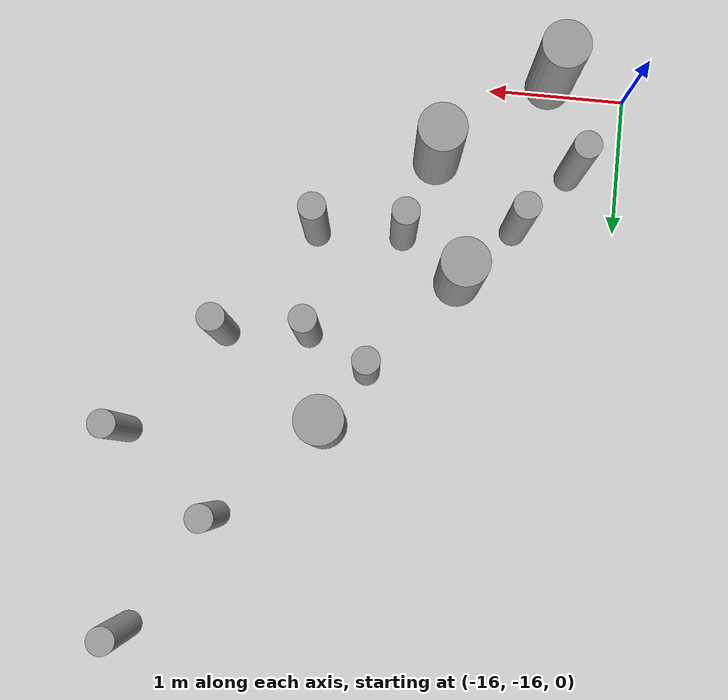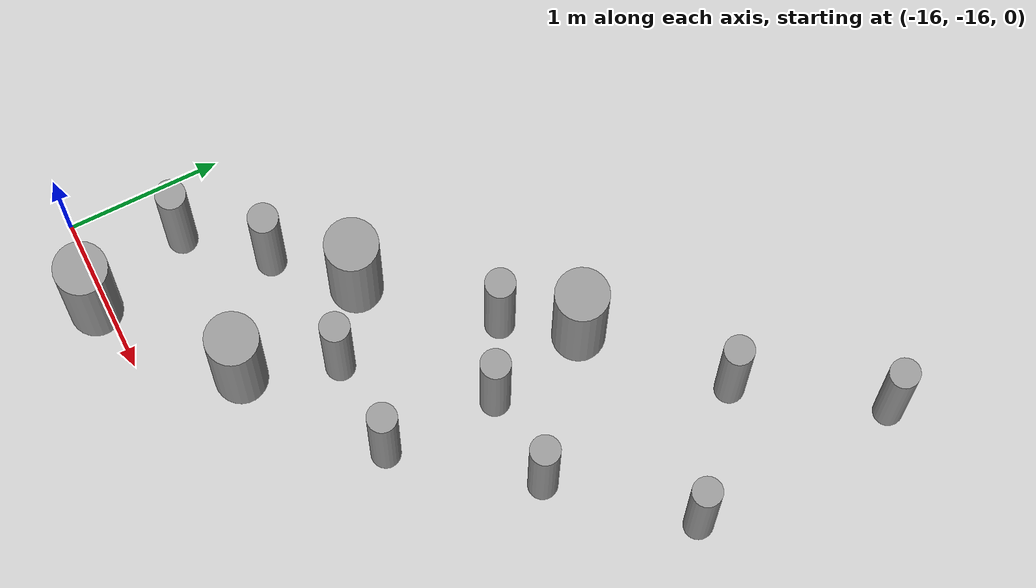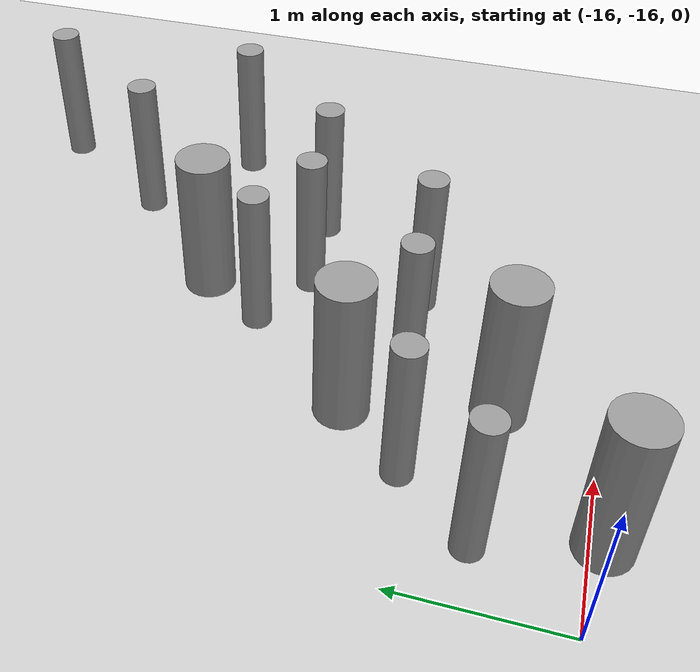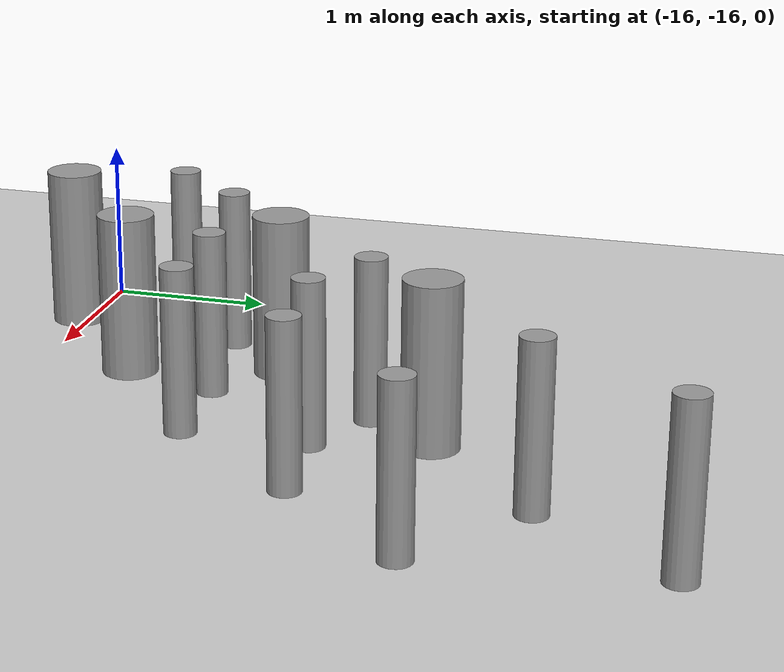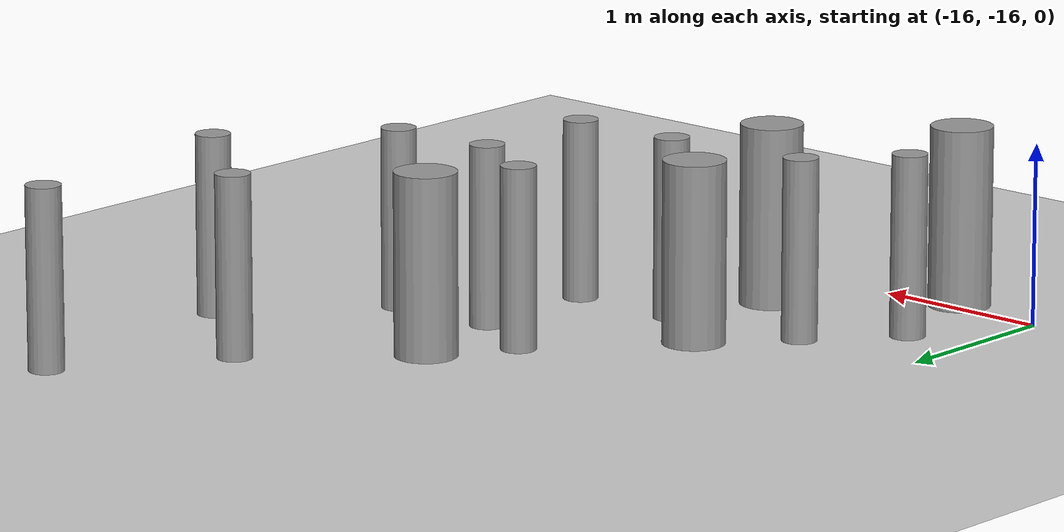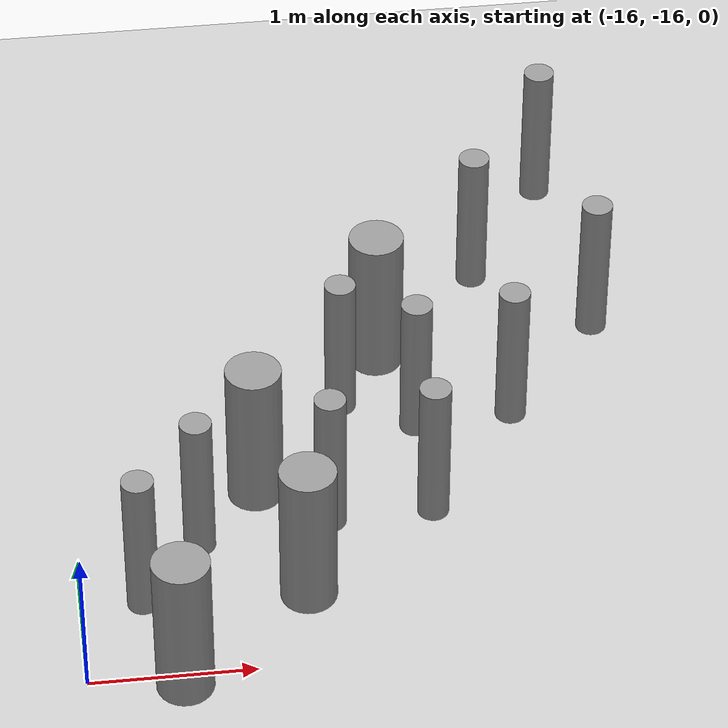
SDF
<sdf version="1.6">
 <world name="default">
  <model name="ground_plane">
   <static>1</static>
   <link name="link">
    <collision name="collision">
     <geometry><plane><normal>0 0 1</normal><size>100 100</size></plane></geometry>
     <surface><friction><ode><mu>100</mu><mu2>50</mu2></ode></friction></surface>
    </collision>
    <visual name="visual">
     <cast_shadows>0</cast_shadows>
     <geometry><plane><normal>0 0 1</normal><size>100 100</size></plane></geometry>
     <material>
      <script><uri>file://media/materials/scripts/gazebo.material</uri><name>Gazebo/Grey</name></script>
     </material>
    </visual>
   </link>
  </model>
  <model name="cyl_wall_clone_clone_1_clone_1_clone_clone_0_clone_1_clone_1_clone_0">
   <link name="link_0">
    <pose>-2.73893 -0.366465 0 0 -0 0</pose>
    <inertial>
     <mass>0.0374993</mass>
     <inertia>
      <ixx>0.00321281</ixx>
      <ixy>0</ixy>
      <ixz>0</ixz>
      <iyy>0.00321281</iyy>
      <iyz>0</iyz>
      <izz>0.000175774</izz>
     </inertia>
    </inertial>
    <visual name="visual">
     <geometry><cylinder><radius>0.0968661</radius><length>1</length></cylinder></geometry>
     <material>
      <lighting>1</lighting>
      <script><uri>file://media/materials/scripts/gazebo.material</uri><name>Gazebo/Grey</name></script>
      <ambient>0.3 0.3 0.3 1</ambient>
      <diffuse>0.7 0.7 0.7 1</diffuse>
      <specular>0.01 0.01 0.01 1</specular>
      <emissive>0 0 0 1</emissive>
     </material>
    </visual>
    <collision name="collision">
     <geometry><cylinder><radius>0.096866</radius><length>1</length></cylinder></geometry>
     <surface>
      <friction>
       <ode><mu>1</mu><mu2>1</mu2><fdir1>0 0 0</fdir1><slip1>0</slip1><slip2>0</slip2></ode>
       <torsional>
        <coefficient>1</coefficient>
        <patch_radius>0</patch_radius>
        <surface_radius>0</surface_radius>
        <use_patch_radius>1</use_patch_radius>
        <ode><slip>0</slip></ode>
       </torsional>
      </friction>
      <bounce><restitution_coefficient>0</restitution_coefficient><threshold>1e+06</threshold></bounce>
      <contact>
       <collide_without_contact>0</collide_without_contact>
       <collide_without_contact_bitmask>1</collide_without_contact_bitmask>
       <collide_bitmask>1</collide_bitmask>
       <ode>
        <soft_cfm>0</soft_cfm>
        <soft_erp>0.2</soft_erp>
        <kp>1e+13</kp>
        <kd>1</kd>
        <max_vel>0.01</max_vel>
        <min_depth>0</min_depth>
       </ode>
       <bullet>
        <split_impulse>1</split_impulse>
        <split_impulse_penetration_threshold>-0.01</split_impulse_penetration_threshold>
        <soft_cfm>0</soft_cfm>
        <soft_erp>0.2</soft_erp>
        <kp>1e+13</kp>
        <kd>1</kd>
       </bullet>
      </contact>
     </surface>
    </collision>
   </link>
   <link name="link_0_clone">
    <pose>-1.73893 0.61877 0 0 -0 0</pose>
    <inertial>
     <mass>0.0374993</mass>
     <inertia>
      <ixx>0.00321281</ixx>
      <ixy>0</ixy>
      <ixz>0</ixz>
      <iyy>0.00321281</iyy>
      <iyz>0</iyz>
      <izz>0.000175774</izz>
     </inertia>
    </inertial>
    <visual name="visual">
     <geometry><cylinder><radius>0.0968661</radius><length>1</length></cylinder></geometry>
     <material>
      <lighting>1</lighting>
      <script><uri>file://media/materials/scripts/gazebo.material</uri><name>Gazebo/Grey</name></script>
      <ambient>0.3 0.3 0.3 1</ambient>
      <diffuse>0.7 0.7 0.7 1</diffuse>
      <specular>0.01 0.01 0.01 1</specular>
      <emissive>0 0 0 1</emissive>
      <shader type="pixel"/>
     </material>
    </visual>
    <collision name="collision">
     <geometry><cylinder><radius>0.096866</radius><length>1</length></cylinder></geometry>
     <surface>
      <friction>
       <ode><mu>1</mu><mu2>1</mu2><fdir1>0 0 0</fdir1><slip1>0</slip1><slip2>0</slip2></ode>
       <torsional>
        <coefficient>1</coefficient>
        <patch_radius>0</patch_radius>
        <surface_radius>0</surface_radius>
        <use_patch_radius>1</use_patch_radius>
        <ode><slip>0</slip></ode>
       </torsional>
      </friction>
      <bounce><restitution_coefficient>0</restitution_coefficient><threshold>1e+06</threshold></bounce>
      <contact>
       <collide_without_contact>0</collide_without_contact>
       <collide_without_contact_bitmask>1</collide_without_contact_bitmask>
       <collide_bitmask>1</collide_bitmask>
       <ode>
        <soft_cfm>0</soft_cfm>
        <soft_erp>0.2</soft_erp>
        <kp>1e+13</kp>
        <kd>1</kd>
        <max_vel>0.01</max_vel>
        <min_depth>0</min_depth>
       </ode>
       <bullet>
        <split_impulse>1</split_impulse>
        <split_impulse_penetration_threshold>-0.01</split_impulse_penetration_threshold>
        <soft_cfm>0</soft_cfm>
        <soft_erp>0.2</soft_erp>
        <kp>1e+13</kp>
        <kd>1</kd>
       </bullet>
      </contact>
     </surface>
    </collision>
   </link>
   <link name="link_0_clone_clone">
    <pose>-0.327073 0.143919 0 0 -0 0</pose>
    <inertial>
     <mass>0.0374993</mass>
     <inertia>
      <ixx>0.00321281</ixx>
      <ixy>0</ixy>
      <ixz>0</ixz>
      <iyy>0.00321281</iyy>
      <iyz>0</iyz>
      <izz>0.000175774</izz>
     </inertia>
    </inertial>
    <visual name="visual">
     <geometry><cylinder><radius>0.0968661</radius><length>1</length></cylinder></geometry>
     <material>
      <lighting>1</lighting>
      <script><uri>file://media/materials/scripts/gazebo.material</uri><name>Gazebo/Grey</name></script>
      <ambient>0.3 0.3 0.3 1</ambient>
      <diffuse>0.7 0.7 0.7 1</diffuse>
      <specular>0.01 0.01 0.01 1</specular>
      <emissive>0 0 0 1</emissive>
      <shader type="pixel"/>
     </material>
    </visual>
    <collision name="collision">
     <geometry><cylinder><radius>0.096866</radius><length>1</length></cylinder></geometry>
     <surface>
      <friction>
       <ode><mu>1</mu><mu2>1</mu2><fdir1>0 0 0</fdir1><slip1>0</slip1><slip2>0</slip2></ode>
       <torsional>
        <coefficient>1</coefficient>
        <patch_radius>0</patch_radius>
        <surface_radius>0</surface_radius>
        <use_patch_radius>1</use_patch_radius>
        <ode><slip>0</slip></ode>
       </torsional>
      </friction>
      <bounce><restitution_coefficient>0</restitution_coefficient><threshold>1e+06</threshold></bounce>
      <contact>
       <collide_without_contact>0</collide_without_contact>
       <collide_without_contact_bitmask>1</collide_without_contact_bitmask>
       <collide_bitmask>1</collide_bitmask>
       <ode>
        <soft_cfm>0</soft_cfm>
        <soft_erp>0.2</soft_erp>
        <kp>1e+13</kp>
        <kd>1</kd>
        <max_vel>0.01</max_vel>
        <min_depth>0</min_depth>
       </ode>
       <bullet>
        <split_impulse>1</split_impulse>
        <split_impulse_penetration_threshold>-0.01</split_impulse_penetration_threshold>
        <soft_cfm>0</soft_cfm>
        <soft_erp>0.2</soft_erp>
        <kp>1e+13</kp>
        <kd>1</kd>
       </bullet>
      </contact>
     </surface>
    </collision>
   </link>
   <link name="link_0_clone_clone_0">
    <pose>1.26107 -0.419359 0 0 -0 0</pose>
    <inertial>
     <mass>0.0374993</mass>
     <inertia>
      <ixx>0.00321281</ixx>
      <ixy>0</ixy>
      <ixz>0</ixz>
      <iyy>0.00321281</iyy>
      <iyz>0</iyz>
      <izz>0.000175774</izz>
     </inertia>
    </inertial>
    <visual name="visual">
     <geometry><cylinder><radius>0.0968661</radius><length>1</length></cylinder></geometry>
     <material>
      <lighting>1</lighting>
      <script><uri>file://media/materials/scripts/gazebo.material</uri><name>Gazebo/Grey</name></script>
      <ambient>0.3 0.3 0.3 1</ambient>
      <diffuse>0.7 0.7 0.7 1</diffuse>
      <specular>0.01 0.01 0.01 1</specular>
      <emissive>0 0 0 1</emissive>
      <shader type="pixel"/>
     </material>
    </visual>
    <collision name="collision">
     <geometry><cylinder><radius>0.096866</radius><length>1</length></cylinder></geometry>
     <surface>
      <friction>
       <ode><mu>1</mu><mu2>1</mu2><fdir1>0 0 0</fdir1><slip1>0</slip1><slip2>0</slip2></ode>
       <torsional>
        <coefficient>1</coefficient>
        <patch_radius>0</patch_radius>
        <surface_radius>0</surface_radius>
        <use_patch_radius>1</use_patch_radius>
        <ode><slip>0</slip></ode>
       </torsional>
      </friction>
      <bounce><restitution_coefficient>0</restitution_coefficient><threshold>1e+06</threshold></bounce>
      <contact>
       <collide_without_contact>0</collide_without_contact>
       <collide_without_contact_bitmask>1</collide_without_contact_bitmask>
       <collide_bitmask>1</collide_bitmask>
       <ode>
        <soft_cfm>0</soft_cfm>
        <soft_erp>0.2</soft_erp>
        <kp>1e+13</kp>
        <kd>1</kd>
        <max_vel>0.01</max_vel>
        <min_depth>0</min_depth>
       </ode>
       <bullet>
        <split_impulse>1</split_impulse>
        <split_impulse_penetration_threshold>-0.01</split_impulse_penetration_threshold>
        <soft_cfm>0</soft_cfm>
        <soft_erp>0.2</soft_erp>
        <kp>1e+13</kp>
        <kd>1</kd>
       </bullet>
      </contact>
     </surface>
    </collision>
   </link>
   <link name="link_0_clone_clone_1">
    <pose>-1.73893 -0.277168 0 0 -0 0</pose>
    <inertial>
     <mass>0.0374993</mass>
     <inertia>
      <ixx>0.00321281</ixx>
      <ixy>0</ixy>
      <ixz>0</ixz>
      <iyy>0.00321281</iyy>
      <iyz>0</iyz>
      <izz>0.000175774</izz>
     </inertia>
    </inertial>
    <visual name="visual">
     <geometry><cylinder><radius>0.0968661</radius><length>1</length></cylinder></geometry>
     <material>
      <lighting>1</lighting>
      <script><uri>file://media/materials/scripts/gazebo.material</uri><name>Gazebo/Grey</name></script>
      <ambient>0.3 0.3 0.3 1</ambient>
      <diffuse>0.7 0.7 0.7 1</diffuse>
      <specular>0.01 0.01 0.01 1</specular>
      <emissive>0 0 0 1</emissive>
      <shader type="pixel"/>
     </material>
    </visual>
    <collision name="collision">
     <geometry><cylinder><radius>0.096866</radius><length>1</length></cylinder></geometry>
     <surface>
      <friction>
       <ode><mu>1</mu><mu2>1</mu2><fdir1>0 0 0</fdir1><slip1>0</slip1><slip2>0</slip2></ode>
       <torsional>
        <coefficient>1</coefficient>
        <patch_radius>0</patch_radius>
        <surface_radius>0</surface_radius>
        <use_patch_radius>1</use_patch_radius>
        <ode><slip>0</slip></ode>
       </torsional>
      </friction>
      <bounce><restitution_coefficient>0</restitution_coefficient><threshold>1e+06</threshold></bounce>
      <contact>
       <collide_without_contact>0</collide_without_contact>
       <collide_without_contact_bitmask>1</collide_without_contact_bitmask>
       <collide_bitmask>1</collide_bitmask>
       <ode>
        <soft_cfm>0</soft_cfm>
        <soft_erp>0.2</soft_erp>
        <kp>1e+13</kp>
        <kd>1</kd>
        <max_vel>0.01</max_vel>
        <min_depth>0</min_depth>
       </ode>
       <bullet>
        <split_impulse>1</split_impulse>
        <split_impulse_penetration_threshold>-0.01</split_impulse_penetration_threshold>
        <soft_cfm>0</soft_cfm>
        <soft_erp>0.2</soft_erp>
        <kp>1e+13</kp>
        <kd>1</kd>
       </bullet>
      </contact>
     </surface>
    </collision>
   </link>
   <link name="link_0_clone_clone_2">
    <pose>-0.738934 0.593961 0 0 -0 0</pose>
    <inertial>
     <mass>0.0374993</mass>
     <inertia>
      <ixx>0.00321281</ixx>
      <ixy>0</ixy>
      <ixz>0</ixz>
      <iyy>0.00321281</iyy>
      <iyz>0</iyz>
      <izz>0.000175774</izz>
     </inertia>
    </inertial>
    <visual name="visual">
     <geometry><cylinder><radius>0.0968661</radius><length>1</length></cylinder></geometry>
     <material>
      <lighting>1</lighting>
      <script><uri>file://media/materials/scripts/gazebo.material</uri><name>Gazebo/Grey</name></script>
      <ambient>0.3 0.3 0.3 1</ambient>
      <diffuse>0.7 0.7 0.7 1</diffuse>
      <specular>0.01 0.01 0.01 1</specular>
      <emissive>0 0 0 1</emissive>
      <shader type="pixel"/>
     </material>
    </visual>
    <collision name="collision">
     <geometry><cylinder><radius>0.096866</radius><length>1</length></cylinder></geometry>
     <surface>
      <friction>
       <ode><mu>1</mu><mu2>1</mu2><fdir1>0 0 0</fdir1><slip1>0</slip1><slip2>0</slip2></ode>
       <torsional>
        <coefficient>1</coefficient>
        <patch_radius>0</patch_radius>
        <surface_radius>0</surface_radius>
        <use_patch_radius>1</use_patch_radius>
        <ode><slip>0</slip></ode>
       </torsional>
      </friction>
      <bounce><restitution_coefficient>0</restitution_coefficient><threshold>1e+06</threshold></bounce>
      <contact>
       <collide_without_contact>0</collide_without_contact>
       <collide_without_contact_bitmask>1</collide_without_contact_bitmask>
       <collide_bitmask>1</collide_bitmask>
       <ode>
        <soft_cfm>0</soft_cfm>
        <soft_erp>0.2</soft_erp>
        <kp>1e+13</kp>
        <kd>1</kd>
        <max_vel>0.01</max_vel>
        <min_depth>0</min_depth>
       </ode>
       <bullet>
        <split_impulse>1</split_impulse>
        <split_impulse_penetration_threshold>-0.01</split_impulse_penetration_threshold>
        <soft_cfm>0</soft_cfm>
        <soft_erp>0.2</soft_erp>
        <kp>1e+13</kp>
        <kd>1</kd>
       </bullet>
      </contact>
     </surface>
    </collision>
   </link>
   <link name="link_0_clone_clone_3">
    <pose>0.261066 0.624849 0 0 -0 0</pose>
    <inertial>
     <mass>0.0374993</mass>
     <inertia>
      <ixx>0.00321281</ixx>
      <ixy>0</ixy>
      <ixz>0</ixz>
      <iyy>0.00321281</iyy>
      <iyz>0</iyz>
      <izz>0.000175774</izz>
     </inertia>
    </inertial>
    <visual name="visual">
     <geometry><cylinder><radius>0.0968661</radius><length>1</length></cylinder></geometry>
     <material>
      <lighting>1</lighting>
      <script><uri>file://media/materials/scripts/gazebo.material</uri><name>Gazebo/Grey</name></script>
      <ambient>0.3 0.3 0.3 1</ambient>
      <diffuse>0.7 0.7 0.7 1</diffuse>
      <specular>0.01 0.01 0.01 1</specular>
      <emissive>0 0 0 1</emissive>
      <shader type="pixel"/>
     </material>
    </visual>
    <collision name="collision">
     <geometry><cylinder><radius>0.096866</radius><length>1</length></cylinder></geometry>
     <surface>
      <friction>
       <ode><mu>1</mu><mu2>1</mu2><fdir1>0 0 0</fdir1><slip1>0</slip1><slip2>0</slip2></ode>
       <torsional>
        <coefficient>1</coefficient>
        <patch_radius>0</patch_radius>
        <surface_radius>0</surface_radius>
        <use_patch_radius>1</use_patch_radius>
        <ode><slip>0</slip></ode>
       </torsional>
      </friction>
      <bounce><restitution_coefficient>0</restitution_coefficient><threshold>1e+06</threshold></bounce>
      <contact>
       <collide_without_contact>0</collide_without_contact>
       <collide_without_contact_bitmask>1</collide_without_contact_bitmask>
       <collide_bitmask>1</collide_bitmask>
       <ode>
        <soft_cfm>0</soft_cfm>
        <soft_erp>0.2</soft_erp>
        <kp>1e+13</kp>
        <kd>1</kd>
        <max_vel>0.01</max_vel>
        <min_depth>0</min_depth>
       </ode>
       <bullet>
        <split_impulse>1</split_impulse>
        <split_impulse_penetration_threshold>-0.01</split_impulse_penetration_threshold>
        <soft_cfm>0</soft_cfm>
        <soft_erp>0.2</soft_erp>
        <kp>1e+13</kp>
        <kd>1</kd>
       </bullet>
      </contact>
     </surface>
    </collision>
   </link>
   <link name="link_0_clone_clone_4">
    <pose>-0.239049 -0.353105 0 0 -0 0</pose>
    <inertial>
     <mass>0.0374993</mass>
     <inertia>
      <ixx>0.00321281</ixx>
      <ixy>0</ixy>
      <ixz>0</ixz>
      <iyy>0.00321281</iyy>
      <iyz>0</iyz>
      <izz>0.000175774</izz>
     </inertia>
    </inertial>
    <visual name="visual">
     <geometry><cylinder><radius>0.0968661</radius><length>1</length></cylinder></geometry>
     <material>
      <lighting>1</lighting>
      <script><uri>file://media/materials/scripts/gazebo.material</uri><name>Gazebo/Grey</name></script>
      <ambient>0.3 0.3 0.3 1</ambient>
      <diffuse>0.7 0.7 0.7 1</diffuse>
      <specular>0.01 0.01 0.01 1</specular>
      <emissive>0 0 0 1</emissive>
      <shader type="pixel"/>
     </material>
    </visual>
    <collision name="collision">
     <geometry><cylinder><radius>0.096866</radius><length>1</length></cylinder></geometry>
     <surface>
      <friction>
       <ode><mu>1</mu><mu2>1</mu2><fdir1>0 0 0</fdir1><slip1>0</slip1><slip2>0</slip2></ode>
       <torsional>
        <coefficient>1</coefficient>
        <patch_radius>0</patch_radius>
        <surface_radius>0</surface_radius>
        <use_patch_radius>1</use_patch_radius>
        <ode><slip>0</slip></ode>
       </torsional>
      </friction>
      <bounce><restitution_coefficient>0</restitution_coefficient><threshold>1e+06</threshold></bounce>
      <contact>
       <collide_without_contact>0</collide_without_contact>
       <collide_without_contact_bitmask>1</collide_without_contact_bitmask>
       <collide_bitmask>1</collide_bitmask>
       <ode>
        <soft_cfm>0</soft_cfm>
        <soft_erp>0.2</soft_erp>
        <kp>1e+13</kp>
        <kd>1</kd>
        <max_vel>0.01</max_vel>
        <min_depth>0</min_depth>
       </ode>
       <bullet>
        <split_impulse>1</split_impulse>
        <split_impulse_penetration_threshold>-0.01</split_impulse_penetration_threshold>
        <soft_cfm>0</soft_cfm>
        <soft_erp>0.2</soft_erp>
        <kp>1e+13</kp>
        <kd>1</kd>
       </bullet>
      </contact>
     </surface>
    </collision>
   </link>
   <link name="link_0_clone_clone_5">
    <pose>0.672792 0.143919 0 0 -0 0</pose>
    <inertial>
     <mass>0.0374993</mass>
     <inertia>
      <ixx>0.00321281</ixx>
      <ixy>0</ixy>
      <ixz>0</ixz>
      <iyy>0.00321281</iyy>
      <iyz>0</iyz>
      <izz>0.000175774</izz>
     </inertia>
    </inertial>
    <visual name="visual">
     <geometry><cylinder><radius>0.0968661</radius><length>1</length></cylinder></geometry>
     <material>
      <lighting>1</lighting>
      <script><uri>file://media/materials/scripts/gazebo.material</uri><name>Gazebo/Grey</name></script>
      <ambient>0.3 0.3 0.3 1</ambient>
      <diffuse>0.7 0.7 0.7 1</diffuse>
      <specular>0.01 0.01 0.01 1</specular>
      <emissive>0 0 0 1</emissive>
      <shader type="pixel"/>
     </material>
    </visual>
    <collision name="collision">
     <geometry><cylinder><radius>0.096866</radius><length>1</length></cylinder></geometry>
     <surface>
      <friction>
       <ode><mu>1</mu><mu2>1</mu2><fdir1>0 0 0</fdir1><slip1>0</slip1><slip2>0</slip2></ode>
       <torsional>
        <coefficient>1</coefficient>
        <patch_radius>0</patch_radius>
        <surface_radius>0</surface_radius>
        <use_patch_radius>1</use_patch_radius>
        <ode><slip>0</slip></ode>
       </torsional>
      </friction>
      <bounce><restitution_coefficient>0</restitution_coefficient><threshold>1e+06</threshold></bounce>
      <contact>
       <collide_without_contact>0</collide_without_contact>
       <collide_without_contact_bitmask>1</collide_without_contact_bitmask>
       <collide_bitmask>1</collide_bitmask>
       <ode>
        <soft_cfm>0</soft_cfm>
        <soft_erp>0.2</soft_erp>
        <kp>1e+13</kp>
        <kd>1</kd>
        <max_vel>0.01</max_vel>
        <min_depth>0</min_depth>
       </ode>
       <bullet>
        <split_impulse>1</split_impulse>
        <split_impulse_penetration_threshold>-0.01</split_impulse_penetration_threshold>
        <soft_cfm>0</soft_cfm>
        <soft_erp>0.2</soft_erp>
        <kp>1e+13</kp>
        <kd>1</kd>
       </bullet>
      </contact>
     </surface>
    </collision>
   </link>
   <link name="link_0_clone_clone_6">
    <pose>1.84596 -0.433423 0 0 -0 0</pose>
    <inertial>
     <mass>0.0374993</mass>
     <inertia>
      <ixx>0.00321281</ixx>
      <ixy>0</ixy>
      <ixz>0</ixz>
      <iyy>0.00321281</iyy>
      <iyz>0</iyz>
      <izz>0.000175774</izz>
     </inertia>
    </inertial>
    <visual name="visual">
     <geometry><cylinder><radius>0.0968661</radius><length>1</length></cylinder></geometry>
     <material>
      <lighting>1</lighting>
      <script><uri>file://media/materials/scripts/gazebo.material</uri><name>Gazebo/Grey</name></script>
      <ambient>0.3 0.3 0.3 1</ambient>
      <diffuse>0.7 0.7 0.7 1</diffuse>
      <specular>0.01 0.01 0.01 1</specular>
      <emissive>0 0 0 1</emissive>
      <shader type="pixel"/>
     </material>
    </visual>
    <collision name="collision">
     <geometry><cylinder><radius>0.096866</radius><length>1</length></cylinder></geometry>
     <surface>
      <friction>
       <ode><mu>1</mu><mu2>1</mu2><fdir1>0 0 0</fdir1><slip1>0</slip1><slip2>0</slip2></ode>
       <torsional>
        <coefficient>1</coefficient>
        <patch_radius>0</patch_radius>
        <surface_radius>0</surface_radius>
        <use_patch_radius>1</use_patch_radius>
        <ode><slip>0</slip></ode>
       </torsional>
      </friction>
      <bounce><restitution_coefficient>0</restitution_coefficient><threshold>1e+06</threshold></bounce>
      <contact>
       <collide_without_contact>0</collide_without_contact>
       <collide_without_contact_bitmask>1</collide_without_contact_bitmask>
       <collide_bitmask>1</collide_bitmask>
       <ode>
        <soft_cfm>0</soft_cfm>
        <soft_erp>0.2</soft_erp>
        <kp>1e+13</kp>
        <kd>1</kd>
        <max_vel>0.01</max_vel>
        <min_depth>0</min_depth>
       </ode>
       <bullet>
        <split_impulse>1</split_impulse>
        <split_impulse_penetration_threshold>-0.01</split_impulse_penetration_threshold>
        <soft_cfm>0</soft_cfm>
        <soft_erp>0.2</soft_erp>
        <kp>1e+13</kp>
        <kd>1</kd>
       </bullet>
      </contact>
     </surface>
    </collision>
   </link>
   <link name="link_1">
    <pose>-0.738934 -0.397931 0 0 -0 0</pose>
    <inertial>
     <mass>0.117398</mass>
     <inertia>
      <ixx>0.0106445</ixx>
      <ixy>0</ixy>
      <ixz>0</ixz>
      <iyy>0.0106445</iyy>
      <iyz>0</iyz>
      <izz>0.00172278</izz>
     </inertia>
    </inertial>
    <visual name="visual">
     <geometry><cylinder><radius>0.171317</radius><length>1</length></cylinder></geometry>
     <material>
      <lighting>1</lighting>
      <script><uri>file://media/materials/scripts/gazebo.material</uri><name>Gazebo/Grey</name></script>
      <ambient>0.3 0.3 0.3 1</ambient>
      <diffuse>0.7 0.7 0.7 1</diffuse>
      <specular>0.01 0.01 0.01 1</specular>
      <emissive>0 0 0 1</emissive>
     </material>
    </visual>
    <collision name="collision">
     <geometry><cylinder><radius>0.171317</radius><length>1</length></cylinder></geometry>
     <surface>
      <friction>
       <ode><mu>1</mu><mu2>1</mu2><fdir1>0 0 0</fdir1><slip1>0</slip1><slip2>0</slip2></ode>
       <torsional>
        <coefficient>1</coefficient>
        <patch_radius>0</patch_radius>
        <surface_radius>0</surface_radius>
        <use_patch_radius>1</use_patch_radius>
        <ode><slip>0</slip></ode>
       </torsional>
      </friction>
      <bounce><restitution_coefficient>0</restitution_coefficient><threshold>1e+06</threshold></bounce>
      <contact>
       <collide_without_contact>0</collide_without_contact>
       <collide_without_contact_bitmask>1</collide_without_contact_bitmask>
       <collide_bitmask>1</collide_bitmask>
       <ode>
        <soft_cfm>0</soft_cfm>
        <soft_erp>0.2</soft_erp>
        <kp>1e+13</kp>
        <kd>1</kd>
        <max_vel>0.01</max_vel>
        <min_depth>0</min_depth>
       </ode>
       <bullet>
        <split_impulse>1</split_impulse>
        <split_impulse_penetration_threshold>-0.01</split_impulse_penetration_threshold>
        <soft_cfm>0</soft_cfm>
        <soft_erp>0.2</soft_erp>
        <kp>1e+13</kp>
        <kd>1</kd>
       </bullet>
      </contact>
     </surface>
    </collision>
   </link>
   <link name="link_1_clone">
    <pose>0.697784 -0.380861 0 0 -0 0</pose>
    <inertial>
     <mass>0.117398</mass>
     <inertia>
      <ixx>0.0106445</ixx>
      <ixy>0</ixy>
      <ixz>0</ixz>
      <iyy>0.0106445</iyy>
      <iyz>0</iyz>
      <izz>0.00172278</izz>
     </inertia>
    </inertial>
    <visual name="visual">
     <geometry><cylinder><radius>0.171317</radius><length>1</length></cylinder></geometry>
     <material>
      <lighting>1</lighting>
      <script><uri>file://media/materials/scripts/gazebo.material</uri><name>Gazebo/Grey</name></script>
      <ambient>0.3 0.3 0.3 1</ambient>
      <diffuse>0.7 0.7 0.7 1</diffuse>
      <specular>0.01 0.01 0.01 1</specular>
      <emissive>0 0 0 1</emissive>
      <shader type="pixel"/>
     </material>
    </visual>
    <collision name="collision">
     <geometry><cylinder><radius>0.171317</radius><length>1</length></cylinder></geometry>
     <surface>
      <friction>
       <ode><mu>1</mu><mu2>1</mu2><fdir1>0 0 0</fdir1><slip1>0</slip1><slip2>0</slip2></ode>
       <torsional>
        <coefficient>1</coefficient>
        <patch_radius>0</patch_radius>
        <surface_radius>0</surface_radius>
        <use_patch_radius>1</use_patch_radius>
        <ode><slip>0</slip></ode>
       </torsional>
      </friction>
      <bounce><restitution_coefficient>0</restitution_coefficient><threshold>1e+06</threshold></bounce>
      <contact>
       <collide_without_contact>0</collide_without_contact>
       <collide_without_contact_bitmask>1</collide_without_contact_bitmask>
       <collide_bitmask>1</collide_bitmask>
       <ode>
        <soft_cfm>0</soft_cfm>
        <soft_erp>0.2</soft_erp>
        <kp>1e+13</kp>
        <kd>1</kd>
        <max_vel>0.01</max_vel>
        <min_depth>0</min_depth>
       </ode>
       <bullet>
        <split_impulse>1</split_impulse>
        <split_impulse_penetration_threshold>-0.01</split_impulse_penetration_threshold>
        <soft_cfm>0</soft_cfm>
        <soft_erp>0.2</soft_erp>
        <kp>1e+13</kp>
        <kd>1</kd>
       </bullet>
      </contact>
     </surface>
    </collision>
   </link>
   <link name="link_1_clone_0">
    <pose>1.26107 0.358974 0 0 -0 0</pose>
    <inertial>
     <mass>0.117398</mass>
     <inertia>
      <ixx>0.0106445</ixx>
      <ixy>0</ixy>
      <ixz>0</ixz>
      <iyy>0.0106445</iyy>
      <iyz>0</iyz>
      <izz>0.00172278</izz>
     </inertia>
    </inertial>
    <visual name="visual">
     <geometry><cylinder><radius>0.171317</radius><length>1</length></cylinder></geometry>
     <material>
      <lighting>1</lighting>
      <script><uri>file://media/materials/scripts/gazebo.material</uri><name>Gazebo/Grey</name></script>
      <ambient>0.3 0.3 0.3 1</ambient>
      <diffuse>0.7 0.7 0.7 1</diffuse>
      <specular>0.01 0.01 0.01 1</specular>
      <emissive>0 0 0 1</emissive>
      <shader type="pixel"/>
     </material>
    </visual>
    <collision name="collision">
     <geometry><cylinder><radius>0.171317</radius><length>1</length></cylinder></geometry>
     <surface>
      <friction>
       <ode><mu>1</mu><mu2>1</mu2><fdir1>0 0 0</fdir1><slip1>0</slip1><slip2>0</slip2></ode>
       <torsional>
        <coefficient>1</coefficient>
        <patch_radius>0</patch_radius>
        <surface_radius>0</surface_radius>
        <use_patch_radius>1</use_patch_radius>
        <ode><slip>0</slip></ode>
       </torsional>
      </friction>
      <bounce><restitution_coefficient>0</restitution_coefficient><threshold>1e+06</threshold></bounce>
      <contact>
       <collide_without_contact>0</collide_without_contact>
       <collide_without_contact_bitmask>1</collide_without_contact_bitmask>
       <collide_bitmask>1</collide_bitmask>
       <ode>
        <soft_cfm>0</soft_cfm>
        <soft_erp>0.2</soft_erp>
        <kp>1e+13</kp>
        <kd>1</kd>
        <max_vel>0.01</max_vel>
        <min_depth>0</min_depth>
       </ode>
       <bullet>
        <split_impulse>1</split_impulse>
        <split_impulse_penetration_threshold>-0.01</split_impulse_penetration_threshold>
        <soft_cfm>0</soft_cfm>
        <soft_erp>0.2</soft_erp>
        <kp>1e+13</kp>
        <kd>1</kd>
       </bullet>
      </contact>
     </surface>
    </collision>
   </link>
   <link name="link_1_clone_1">
    <pose>2.26107 0.143919 0 0 -0 0</pose>
    <inertial>
     <mass>0.117398</mass>
     <inertia>
      <ixx>0.0106445</ixx>
      <ixy>0</ixy>
      <ixz>0</ixz>
      <iyy>0.0106445</iyy>
      <iyz>0</iyz>
      <izz>0.00172278</izz>
     </inertia>
    </inertial>
    <visual name="visual">
     <geometry><cylinder><radius>0.171317</radius><length>1</length></cylinder></geometry>
     <material>
      <lighting>1</lighting>
      <script><uri>file://media/materials/scripts/gazebo.material</uri><name>Gazebo/Grey</name></script>
      <ambient>0.3 0.3 0.3 1</ambient>
      <diffuse>0.7 0.7 0.7 1</diffuse>
      <specular>0.01 0.01 0.01 1</specular>
      <emissive>0 0 0 1</emissive>
      <shader type="pixel"/>
     </material>
    </visual>
    <collision name="collision">
     <geometry><cylinder><radius>0.171317</radius><length>1</length></cylinder></geometry>
     <surface>
      <friction>
       <ode><mu>1</mu><mu2>1</mu2><fdir1>0 0 0</fdir1><slip1>0</slip1><slip2>0</slip2></ode>
       <torsional>
        <coefficient>1</coefficient>
        <patch_radius>0</patch_radius>
        <surface_radius>0</surface_radius>
        <use_patch_radius>1</use_patch_radius>
        <ode><slip>0</slip></ode>
       </torsional>
      </friction>
      <bounce><restitution_coefficient>0</restitution_coefficient><threshold>1e+06</threshold></bounce>
      <contact>
       <collide_without_contact>0</collide_without_contact>
       <collide_without_contact_bitmask>1</collide_without_contact_bitmask>
       <collide_bitmask>1</collide_bitmask>
       <ode>
        <soft_cfm>0</soft_cfm>
        <soft_erp>0.2</soft_erp>
        <kp>1e+13</kp>
        <kd>1</kd>
        <max_vel>0.01</max_vel>
        <min_depth>0</min_depth>
       </ode>
       <bullet>
        <split_impulse>1</split_impulse>
        <split_impulse_penetration_threshold>-0.01</split_impulse_penetration_threshold>
        <soft_cfm>0</soft_cfm>
        <soft_erp>0.2</soft_erp>
        <kp>1e+13</kp>
        <kd>1</kd>
       </bullet>
      </contact>
     </surface>
    </collision>
   </link>
   <static>1</static>
   <pose>-14.1456 -14.2086 0.5 0 0 -2.24061</pose>
  </model>
 </world>
</sdf>
